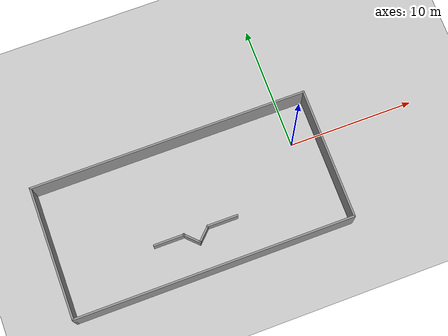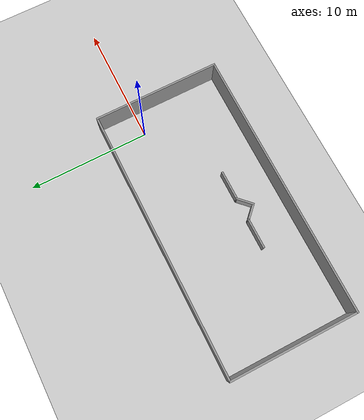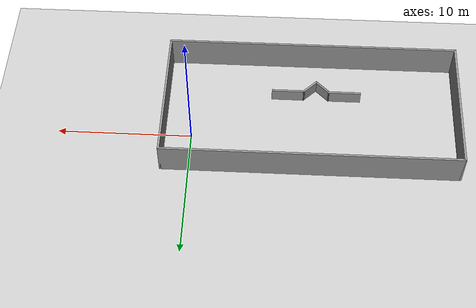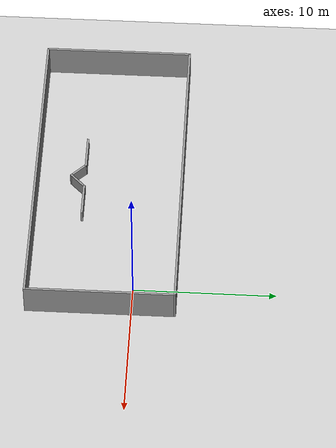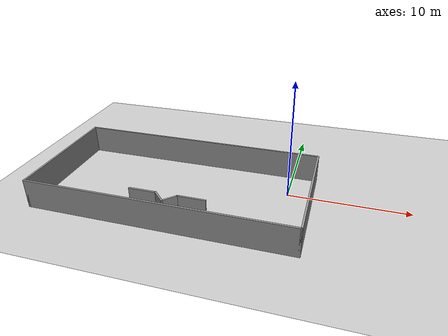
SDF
<sdf version="1.6">
 <world name="default">
  <model name="ground_plane">
   <static>1</static>
   <link name="link">
    <collision name="collision">
     <geometry><plane><normal>0 0 1</normal><size>100 100</size></plane></geometry>
     <surface>
      <contact><collide_bitmask>65535</collide_bitmask></contact>
      <friction><ode><mu>100</mu><mu2>50</mu2></ode></friction>
     </surface>
    </collision>
    <visual name="visual">
     <cast_shadows>0</cast_shadows>
     <geometry><plane><normal>0 0 1</normal><size>100 100</size></plane></geometry>
     <material>
      <script><uri>file://media/materials/scripts/gazebo.material</uri><name>Gazebo/Grey</name></script>
     </material>
    </visual>
   </link>
  </model>
  <light name="sun" type="directional">
   <pose>0 0 10 0 -0 0</pose>
   <diffuse>0.8 0.8 0.8 1</diffuse>
   <specular>0.2 0.2 0.2 1</specular>
   <attenuation>
    <range>1000</range>
    <constant>0.9</constant>
    <linear>0.01</linear>
    <quadratic>0.001</quadratic>
   </attenuation>
   <direction>-0.5 0.1 -0.9</direction>
  </light>
  <gravity>0 0 -9.8</gravity>
  <magnetic_field>6e-06 2.3e-05 -4.2e-05</magnetic_field>
  <atmosphere type="adiabatic"/>
  <physics name="default_physics" default="0" type="ode">
   <max_step_size>0.001</max_step_size>
   <real_time_factor>1</real_time_factor>
   <real_time_update_rate>1000</real_time_update_rate>
  </physics>
  <scene><ambient>0.4 0.4 0.4 1</ambient><background>0.7 0.7 0.7 1</background><shadows>1</shadows></scene>
  <audio><device>default</device></audio>
  <spherical_coordinates>
   <surface_model>EARTH_WGS84</surface_model>
   <latitude_deg>0</latitude_deg>
   <longitude_deg>0</longitude_deg>
   <elevation>0</elevation>
   <heading_deg>0</heading_deg>
  </spherical_coordinates>
  <model name="wall">
   <pose>-8.89671 -2.14682 0 0 -0 0</pose>
   <link name="Wall_10">
    <collision name="Wall_10_Collision">
     <geometry><box><size>10.5 0.15 2.5</size></box></geometry>
     <pose>0 0 1.25 0 -0 0</pose>
    </collision>
    <visual name="Wall_10_Visual">
     <pose>0 0 1.25 0 -0 0</pose>
     <geometry><box><size>10.5 0.15 2.5</size></box></geometry>
     <material>
      <script><uri>file://media/materials/scripts/gazebo.material</uri><name>Gazebo/Grey</name></script>
      <ambient>1 1 1 1</ambient>
     </material>
     <meta><layer>0</layer></meta>
    </visual>
    <pose>-10.925 -0 0 0 -0 -1.5708</pose>
   </link>
   <link name="Wall_11">
    <collision name="Wall_11_Collision">
     <geometry><box><size>22 0.15 2.5</size></box></geometry>
     <pose>0 0 1.25 0 -0 0</pose>
    </collision>
    <visual name="Wall_11_Visual">
     <pose>0 0 1.25 0 -0 0</pose>
     <geometry><box><size>22 0.15 2.5</size></box></geometry>
     <material>
      <script><uri>file://media/materials/scripts/gazebo.material</uri><name>Gazebo/Grey</name></script>
      <ambient>1 1 1 1</ambient>
     </material>
     <meta><layer>0</layer></meta>
    </visual>
    <pose>-0 -5.175 0 0 -0 0</pose>
   </link>
   <link name="Wall_12">
    <collision name="Wall_12_Collision">
     <geometry><box><size>10.5 0.15 2.5</size></box></geometry>
     <pose>0 0 1.25 0 -0 0</pose>
    </collision>
    <visual name="Wall_12_Visual">
     <pose>0 0 1.25 0 -0 0</pose>
     <geometry><box><size>10.5 0.15 2.5</size></box></geometry>
     <material>
      <script><uri>file://media/materials/scripts/gazebo.material</uri><name>Gazebo/Grey</name></script>
      <ambient>1 1 1 1</ambient>
     </material>
     <meta><layer>0</layer></meta>
    </visual>
    <pose>10.925 -0 0 0 -0 1.5708</pose>
   </link>
   <link name="Wall_14">
    <collision name="Wall_14_Collision">
     <geometry><box><size>22 0.15 2.5</size></box></geometry>
     <pose>0 0 1.25 0 -0 0</pose>
    </collision>
    <visual name="Wall_14_Visual">
     <pose>0 0 1.25 0 -0 0</pose>
     <geometry><box><size>22 0.15 2.5</size></box></geometry>
     <material>
      <script><uri>file://media/materials/scripts/gazebo.material</uri><name>Gazebo/Grey</name></script>
      <ambient>1 1 1 1</ambient>
     </material>
     <meta><layer>0</layer></meta>
    </visual>
    <pose>-0 5.175 0 0 -0 0</pose>
   </link>
   <link name="Wall_5">
    <collision name="Wall_5_Collision">
     <geometry><box><size>2.5 0.15 1</size></box></geometry>
     <pose>0 0 0.5 0 -0 0</pose>
    </collision>
    <visual name="Wall_5_Visual">
     <pose>0 0 0.5 0 -0 0</pose>
     <geometry><box><size>2.5 0.15 1</size></box></geometry>
     <material>
      <script><uri>file://media/materials/scripts/gazebo.material</uri><name>Gazebo/Grey</name></script>
      <ambient>1 1 1 1</ambient>
     </material>
     <meta><layer>0</layer></meta>
    </visual>
    <pose>-2.51829 -1.80218 0 0 -0 0</pose>
   </link>
   <link name="Wall_6">
    <collision name="Wall_6_Collision">
     <geometry><box><size>1.5 0.15 1</size></box></geometry>
     <pose>0 0 0.5 0 -0 0</pose>
    </collision>
    <visual name="Wall_6_Visual">
     <pose>0 0 0.5 0 -0 0</pose>
     <geometry><box><size>1.5 0.15 1</size></box></geometry>
     <material>
      <script><uri>file://media/materials/scripts/gazebo.material</uri><name>Gazebo/Grey</name></script>
      <ambient>1 1 1 1</ambient>
     </material>
     <meta><layer>0</layer></meta>
    </visual>
    <pose>-0.86629 -2.27968 0 0 -0 -0.785922</pose>
   </link>
   <link name="Wall_7">
    <collision name="Wall_7_Collision">
     <geometry><box><size>1.5 0.15 1</size></box></geometry>
     <pose>0 0 0.5 0 -0 0</pose>
    </collision>
    <visual name="Wall_7_Visual">
     <pose>0 0 0.5 0 -0 0</pose>
     <geometry><box><size>1.5 0.15 1</size></box></geometry>
     <material>
      <script><uri>file://media/materials/scripts/gazebo.material</uri><name>Gazebo/Grey</name></script>
      <ambient>1 1 1 1</ambient>
     </material>
     <meta><layer>0</layer></meta>
    </visual>
    <pose>0.088209 -2.27968 0 0 -0 0.785398</pose>
   </link>
   <link name="Wall_8">
    <collision name="Wall_8_Collision">
     <geometry><box><size>2.5 0.15 1</size></box></geometry>
     <pose>0 0 0.5 0 -0 0</pose>
    </collision>
    <visual name="Wall_8_Visual">
     <pose>0 0 0.5 0 -0 0</pose>
     <geometry><box><size>2.5 0.15 1</size></box></geometry>
     <material>
      <script><uri>file://media/materials/scripts/gazebo.material</uri><name>Gazebo/Grey</name></script>
      <ambient>1 1 1 1</ambient>
     </material>
     <meta><layer>0</layer></meta>
    </visual>
    <pose>1.74071 -1.80218 0 0 -0 0</pose>
   </link>
   <static>1</static>
  </model>
 </world>
</sdf>
